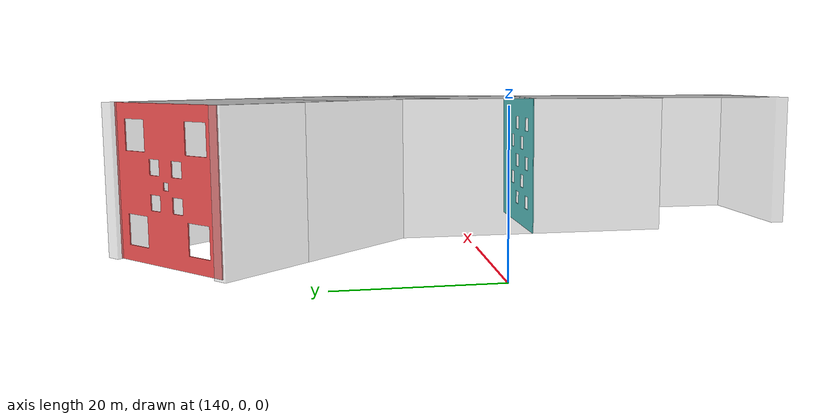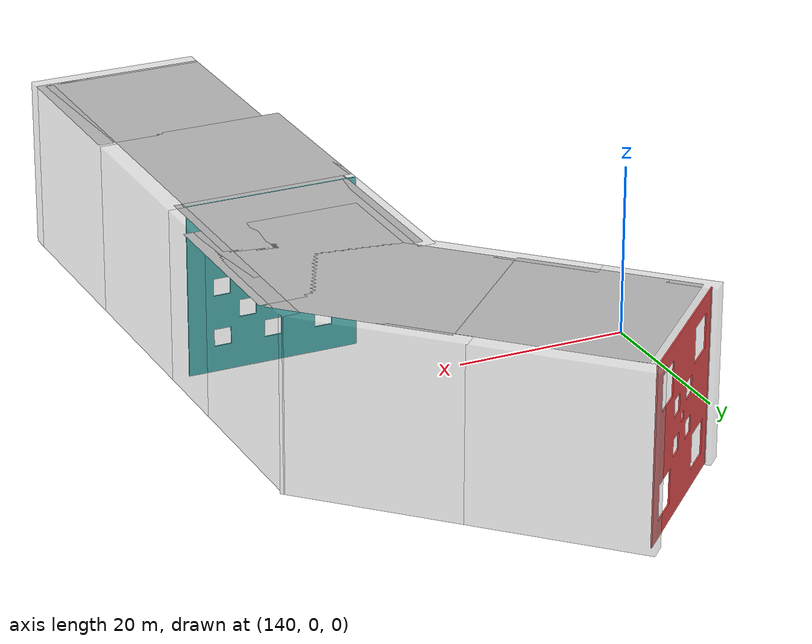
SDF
<?xml version='1.0'?>
<sdf version='1.7'>
  <model name='race_1_07'>
    <link name='link_clone_17'>
      <self_collide>0</self_collide>
      <enable_wind>0</enable_wind>
      <kinematic>0</kinematic>
      <pose>180 -51 10 1.5708 -0 0</pose>
      <visual name='visual'>
        <cast_shadows>1</cast_shadows>
        <transparency>0.6</transparency>
        <geometry>
          <box>
            <size>20 20 2</size>
          </box>
        </geometry>
        <material>
          <script>
            <uri>model://new_wall/materials/scripts</uri>
            <uri>model://new_wall/materials/textures/</uri>
            <name>NewWall/Image</name>
          </script>
          <shader type='pixel'/>
        </material>
        <pose>0 0 0 0 -0 0</pose>
      </visual>
      <collision name='collision'>
        <laser_retro>0</laser_retro>
        <max_contacts>10</max_contacts>
        <pose>0 0 0 0 -0 0</pose>
        <geometry>
          <box>
            <size>20 20 2</size>
          </box>
        </geometry>
        <surface>
          <friction>
            <ode>
              <mu>1</mu>
              <mu2>1</mu2>
              <fdir1>0 0 0</fdir1>
              <slip1>0</slip1>
              <slip2>0</slip2>
            </ode>
            <torsional>
              <coefficient>1</coefficient>
              <patch_radius>0</patch_radius>
              <surface_radius>0</surface_radius>
              <use_patch_radius>1</use_patch_radius>
              <ode>
                <slip>0</slip>
              </ode>
            </torsional>
          </friction>
          <bounce>
            <restitution_coefficient>0</restitution_coefficient>
            <threshold>1e+06</threshold>
          </bounce>
          <contact>
            <collide_without_contact>0</collide_without_contact>
            <collide_without_contact_bitmask>1</collide_without_contact_bitmask>
            <collide_bitmask>1</collide_bitmask>
            <ode>
              <soft_cfm>0</soft_cfm>
              <soft_erp>0.2</soft_erp>
              <kp>1e+13</kp>
              <kd>1</kd>
              <max_vel>0.01</max_vel>
              <min_depth>0</min_depth>
            </ode>
            <bullet>
              <split_impulse>1</split_impulse>
              <split_impulse_penetration_threshold>-0.01</split_impulse_penetration_threshold>
              <soft_cfm>0</soft_cfm>
              <soft_erp>0.2</soft_erp>
              <kp>1e+13</kp>
              <kd>1</kd>
            </bullet>
          </contact>
        </surface>
      </collision>
    </link>
    <link name='link_clone_18'>
      <self_collide>0</self_collide>
      <enable_wind>0</enable_wind>
      <kinematic>0</kinematic>
      <pose>182.482 26 10 1.5708 3e-06 -0.785398</pose>
      <visual name='visual'>
        <cast_shadows>1</cast_shadows>
        <transparency>0.6</transparency>
        <geometry>
          <box>
            <size>20 20 2</size>
          </box>
        </geometry>
        <material>
          <script>
            <uri>model://new_wall/materials/scripts</uri>
            <uri>model://new_wall/materials/textures/</uri>
            <name>NewWall/Image</name>
          </script>
          <shader type='pixel'/>
        </material>
        <pose>0 0 0 0 -0 0</pose>
      </visual>
      <collision name='collision'>
        <laser_retro>0</laser_retro>
        <max_contacts>10</max_contacts>
        <pose>0 0 0 0 -0 0</pose>
        <geometry>
          <box>
            <size>20 20 2</size>
          </box>
        </geometry>
        <surface>
          <friction>
            <ode>
              <mu>1</mu>
              <mu2>1</mu2>
              <fdir1>0 0 0</fdir1>
              <slip1>0</slip1>
              <slip2>0</slip2>
            </ode>
            <torsional>
              <coefficient>1</coefficient>
              <patch_radius>0</patch_radius>
              <surface_radius>0</surface_radius>
              <use_patch_radius>1</use_patch_radius>
              <ode>
                <slip>0</slip>
              </ode>
            </torsional>
          </friction>
          <bounce>
            <restitution_coefficient>0</restitution_coefficient>
            <threshold>1e+06</threshold>
          </bounce>
          <contact>
            <collide_without_contact>0</collide_without_contact>
            <collide_without_contact_bitmask>1</collide_without_contact_bitmask>
            <collide_bitmask>1</collide_bitmask>
            <ode>
              <soft_cfm>0</soft_cfm>
              <soft_erp>0.2</soft_erp>
              <kp>1e+13</kp>
              <kd>1</kd>
              <max_vel>0.01</max_vel>
              <min_depth>0</min_depth>
            </ode>
            <bullet>
              <split_impulse>1</split_impulse>
              <split_impulse_penetration_threshold>-0.01</split_impulse_penetration_threshold>
              <soft_cfm>0</soft_cfm>
              <soft_erp>0.2</soft_erp>
              <kp>1e+13</kp>
              <kd>1</kd>
            </bullet>
          </contact>
        </surface>
      </collision>
    </link>
    <link name='link_clone_18_clone'>
      <self_collide>0</self_collide>
      <enable_wind>0</enable_wind>
      <kinematic>0</kinematic>
      <pose>162.585 16 10 1.5708 3e-06 -0.785398</pose>
      <visual name='visual'>
        <cast_shadows>1</cast_shadows>
        <transparency>0.6</transparency>
        <geometry>
          <box>
            <size>20 20 2</size>
          </box>
        </geometry>
        <material>
          <script>
            <uri>model://new_wall/materials/scripts</uri>
            <uri>model://new_wall/materials/textures/</uri>
            <name>NewWall/Image</name>
          </script>
          <shader type='pixel'/>
        </material>
        <pose>0 0 0 0 -0 0</pose>
      </visual>
      <collision name='collision'>
        <laser_retro>0</laser_retro>
        <max_contacts>10</max_contacts>
        <pose>0 0 0 0 -0 0</pose>
        <geometry>
          <box>
            <size>20 20 2</size>
          </box>
        </geometry>
        <surface>
          <friction>
            <ode>
              <mu>1</mu>
              <mu2>1</mu2>
              <fdir1>0 0 0</fdir1>
              <slip1>0</slip1>
              <slip2>0</slip2>
            </ode>
            <torsional>
              <coefficient>1</coefficient>
              <patch_radius>0</patch_radius>
              <surface_radius>0</surface_radius>
              <use_patch_radius>1</use_patch_radius>
              <ode>
                <slip>0</slip>
              </ode>
            </torsional>
          </friction>
          <bounce>
            <restitution_coefficient>0</restitution_coefficient>
            <threshold>1e+06</threshold>
          </bounce>
          <contact>
            <collide_without_contact>0</collide_without_contact>
            <collide_without_contact_bitmask>1</collide_without_contact_bitmask>
            <collide_bitmask>1</collide_bitmask>
            <ode>
              <soft_cfm>0</soft_cfm>
              <soft_erp>0.2</soft_erp>
              <kp>1e+13</kp>
              <kd>1</kd>
              <max_vel>0.01</max_vel>
              <min_depth>0</min_depth>
            </ode>
            <bullet>
              <split_impulse>1</split_impulse>
              <split_impulse_penetration_threshold>-0.01</split_impulse_penetration_threshold>
              <soft_cfm>0</soft_cfm>
              <soft_erp>0.2</soft_erp>
              <kp>1e+13</kp>
              <kd>1</kd>
            </bullet>
          </contact>
        </surface>
      </collision>
    </link>
    <link name='link_clone_18_clone_0'>
      <self_collide>0</self_collide>
      <enable_wind>0</enable_wind>
      <kinematic>0</kinematic>
      <pose>168.495 40 10 1.5708 3e-06 -0.785398</pose>
      <visual name='visual'>
        <cast_shadows>1</cast_shadows>
        <transparency>0.6</transparency>
        <geometry>
          <box>
            <size>20 20 2</size>
          </box>
        </geometry>
        <material>
          <script>
            <uri>model://new_wall/materials/scripts</uri>
            <uri>model://new_wall/materials/textures/</uri>
            <name>NewWall/Image</name>
          </script>
          <shader type='pixel'/>
        </material>
        <pose>0 0 0 0 -0 0</pose>
      </visual>
      <collision name='collision'>
        <laser_retro>0</laser_retro>
        <max_contacts>10</max_contacts>
        <pose>0 0 0 0 -0 0</pose>
        <geometry>
          <box>
            <size>20 20 2</size>
          </box>
        </geometry>
        <surface>
          <friction>
            <ode>
              <mu>1</mu>
              <mu2>1</mu2>
              <fdir1>0 0 0</fdir1>
              <slip1>0</slip1>
              <slip2>0</slip2>
            </ode>
            <torsional>
              <coefficient>1</coefficient>
              <patch_radius>0</patch_radius>
              <surface_radius>0</surface_radius>
              <use_patch_radius>1</use_patch_radius>
              <ode>
                <slip>0</slip>
              </ode>
            </torsional>
          </friction>
          <bounce>
            <restitution_coefficient>0</restitution_coefficient>
            <threshold>1e+06</threshold>
          </bounce>
          <contact>
            <collide_without_contact>0</collide_without_contact>
            <collide_without_contact_bitmask>1</collide_without_contact_bitmask>
            <collide_bitmask>1</collide_bitmask>
            <ode>
              <soft_cfm>0</soft_cfm>
              <soft_erp>0.2</soft_erp>
              <kp>1e+13</kp>
              <kd>1</kd>
              <max_vel>0.01</max_vel>
              <min_depth>0</min_depth>
            </ode>
            <bullet>
              <split_impulse>1</split_impulse>
              <split_impulse_penetration_threshold>-0.01</split_impulse_penetration_threshold>
              <soft_cfm>0</soft_cfm>
              <soft_erp>0.2</soft_erp>
              <kp>1e+13</kp>
              <kd>1</kd>
            </bullet>
          </contact>
        </surface>
      </collision>
    </link>
    <link name='link_clone_18_clone_1'>
      <self_collide>0</self_collide>
      <enable_wind>0</enable_wind>
      <kinematic>0</kinematic>
      <pose>153.586 25 10 1.5708 3e-06 -0.785398</pose>
      <visual name='visual'>
        <cast_shadows>1</cast_shadows>
        <transparency>0.6</transparency>
        <geometry>
          <box>
            <size>20 20 2</size>
          </box>
        </geometry>
        <material>
          <script>
            <uri>model://new_wall/materials/scripts</uri>
            <uri>model://new_wall/materials/textures/</uri>
            <name>NewWall/Image</name>
          </script>
          <shader type='pixel'/>
        </material>
        <pose>0 0 0 0 -0 0</pose>
      </visual>
      <collision name='collision'>
        <laser_retro>0</laser_retro>
        <max_contacts>10</max_contacts>
        <pose>0 0 0 0 -0 0</pose>
        <geometry>
          <box>
            <size>20 20 2</size>
          </box>
        </geometry>
        <surface>
          <friction>
            <ode>
              <mu>1</mu>
              <mu2>1</mu2>
              <fdir1>0 0 0</fdir1>
              <slip1>0</slip1>
              <slip2>0</slip2>
            </ode>
            <torsional>
              <coefficient>1</coefficient>
              <patch_radius>0</patch_radius>
              <surface_radius>0</surface_radius>
              <use_patch_radius>1</use_patch_radius>
              <ode>
                <slip>0</slip>
              </ode>
            </torsional>
          </friction>
          <bounce>
            <restitution_coefficient>0</restitution_coefficient>
            <threshold>1e+06</threshold>
          </bounce>
          <contact>
            <collide_without_contact>0</collide_without_contact>
            <collide_without_contact_bitmask>1</collide_without_contact_bitmask>
            <collide_bitmask>1</collide_bitmask>
            <ode>
              <soft_cfm>0</soft_cfm>
              <soft_erp>0.2</soft_erp>
              <kp>1e+13</kp>
              <kd>1</kd>
              <max_vel>0.01</max_vel>
              <min_depth>0</min_depth>
            </ode>
            <bullet>
              <split_impulse>1</split_impulse>
              <split_impulse_penetration_threshold>-0.01</split_impulse_penetration_threshold>
              <soft_cfm>0</soft_cfm>
              <soft_erp>0.2</soft_erp>
              <kp>1e+13</kp>
              <kd>1</kd>
            </bullet>
          </contact>
        </surface>
      </collision>
    </link>
    <link name='link_clone_3_clone_3'>
      <self_collide>0</self_collide>
      <enable_wind>0</enable_wind>
      <kinematic>0</kinematic>
      <pose>189 -40 10 1.5708 -0 1.5708</pose>
      <visual name='visual'>
        <cast_shadows>1</cast_shadows>
        <transparency>0.6</transparency>
        <geometry>
          <box>
            <size>20 20 2</size>
          </box>
        </geometry>
        <material>
          <script>
            <uri>model://new_wall/materials/scripts</uri>
            <uri>model://new_wall/materials/textures/</uri>
            <name>NewWall/Image</name>
          </script>
          <shader type='pixel'/>
        </material>
        <pose>0 0 0 0 -0 0</pose>
      </visual>
      <collision name='collision'>
        <laser_retro>0</laser_retro>
        <max_contacts>10</max_contacts>
        <pose>0 0 0 0 -0 0</pose>
        <geometry>
          <box>
            <size>20 20 2</size>
          </box>
        </geometry>
        <surface>
          <friction>
            <ode>
              <mu>1</mu>
              <mu2>1</mu2>
              <fdir1>0 0 0</fdir1>
              <slip1>0</slip1>
              <slip2>0</slip2>
            </ode>
            <torsional>
              <coefficient>1</coefficient>
              <patch_radius>0</patch_radius>
              <surface_radius>0</surface_radius>
              <use_patch_radius>1</use_patch_radius>
              <ode>
                <slip>0</slip>
              </ode>
            </torsional>
          </friction>
          <bounce>
            <restitution_coefficient>0</restitution_coefficient>
            <threshold>1e+06</threshold>
          </bounce>
          <contact>
            <collide_without_contact>0</collide_without_contact>
            <collide_without_contact_bitmask>1</collide_without_contact_bitmask>
            <collide_bitmask>1</collide_bitmask>
            <ode>
              <soft_cfm>0</soft_cfm>
              <soft_erp>0.2</soft_erp>
              <kp>1e+13</kp>
              <kd>1</kd>
              <max_vel>0.01</max_vel>
              <min_depth>0</min_depth>
            </ode>
            <bullet>
              <split_impulse>1</split_impulse>
              <split_impulse_penetration_threshold>-0.01</split_impulse_penetration_threshold>
              <soft_cfm>0</soft_cfm>
              <soft_erp>0.2</soft_erp>
              <kp>1e+13</kp>
              <kd>1</kd>
            </bullet>
          </contact>
        </surface>
      </collision>
    </link>
    <link name='link_clone_3_clone_4'>
      <self_collide>0</self_collide>
      <enable_wind>0</enable_wind>
      <kinematic>0</kinematic>
      <pose>169 -20 10 1.5708 -0 1.5708</pose>
      <visual name='visual'>
        <cast_shadows>1</cast_shadows>
        <transparency>0.6</transparency>
        <geometry>
          <box>
            <size>20 20 2</size>
          </box>
        </geometry>
        <material>
          <script>
            <uri>model://new_wall/materials/scripts</uri>
            <uri>model://new_wall/materials/textures/</uri>
            <name>NewWall/Image</name>
          </script>
          <shader type='pixel'/>
        </material>
        <pose>0 0 0 0 -0 0</pose>
      </visual>
      <collision name='collision'>
        <laser_retro>0</laser_retro>
        <max_contacts>10</max_contacts>
        <pose>0 0 0 0 -0 0</pose>
        <geometry>
          <box>
            <size>20 20 2</size>
          </box>
        </geometry>
        <surface>
          <friction>
            <ode>
              <mu>1</mu>
              <mu2>1</mu2>
              <fdir1>0 0 0</fdir1>
              <slip1>0</slip1>
              <slip2>0</slip2>
            </ode>
            <torsional>
              <coefficient>1</coefficient>
              <patch_radius>0</patch_radius>
              <surface_radius>0</surface_radius>
              <use_patch_radius>1</use_patch_radius>
              <ode>
                <slip>0</slip>
              </ode>
            </torsional>
          </friction>
          <bounce>
            <restitution_coefficient>0</restitution_coefficient>
            <threshold>1e+06</threshold>
          </bounce>
          <contact>
            <collide_without_contact>0</collide_without_contact>
            <collide_without_contact_bitmask>1</collide_without_contact_bitmask>
            <collide_bitmask>1</collide_bitmask>
            <ode>
              <soft_cfm>0</soft_cfm>
              <soft_erp>0.2</soft_erp>
              <kp>1e+13</kp>
              <kd>1</kd>
              <max_vel>0.01</max_vel>
              <min_depth>0</min_depth>
            </ode>
            <bullet>
              <split_impulse>1</split_impulse>
              <split_impulse_penetration_threshold>-0.01</split_impulse_penetration_threshold>
              <soft_cfm>0</soft_cfm>
              <soft_erp>0.2</soft_erp>
              <kp>1e+13</kp>
              <kd>1</kd>
            </bullet>
          </contact>
        </surface>
      </collision>
    </link>
    <link name='link_clone_3_clone_5'>
      <self_collide>0</self_collide>
      <enable_wind>0</enable_wind>
      <kinematic>0</kinematic>
      <pose>189 -20 10 1.5708 -0 1.5708</pose>
      <visual name='visual'>
        <cast_shadows>1</cast_shadows>
        <transparency>0.6</transparency>
        <geometry>
          <box>
            <size>20 20 2</size>
          </box>
        </geometry>
        <material>
          <script>
            <uri>model://new_wall/materials/scripts</uri>
            <uri>model://new_wall/materials/textures/</uri>
            <name>NewWall/Image</name>
          </script>
          <shader type='pixel'/>
        </material>
        <pose>0 0 0 0 -0 0</pose>
      </visual>
      <collision name='collision'>
        <laser_retro>0</laser_retro>
        <max_contacts>10</max_contacts>
        <pose>0 0 0 0 -0 0</pose>
        <geometry>
          <box>
            <size>20 20 2</size>
          </box>
        </geometry>
        <surface>
          <friction>
            <ode>
              <mu>1</mu>
              <mu2>1</mu2>
              <fdir1>0 0 0</fdir1>
              <slip1>0</slip1>
              <slip2>0</slip2>
            </ode>
            <torsional>
              <coefficient>1</coefficient>
              <patch_radius>0</patch_radius>
              <surface_radius>0</surface_radius>
              <use_patch_radius>1</use_patch_radius>
              <ode>
                <slip>0</slip>
              </ode>
            </torsional>
          </friction>
          <bounce>
            <restitution_coefficient>0</restitution_coefficient>
            <threshold>1e+06</threshold>
          </bounce>
          <contact>
            <collide_without_contact>0</collide_without_contact>
            <collide_without_contact_bitmask>1</collide_without_contact_bitmask>
            <collide_bitmask>1</collide_bitmask>
            <ode>
              <soft_cfm>0</soft_cfm>
              <soft_erp>0.2</soft_erp>
              <kp>1e+13</kp>
              <kd>1</kd>
              <max_vel>0.01</max_vel>
              <min_depth>0</min_depth>
            </ode>
            <bullet>
              <split_impulse>1</split_impulse>
              <split_impulse_penetration_threshold>-0.01</split_impulse_penetration_threshold>
              <soft_cfm>0</soft_cfm>
              <soft_erp>0.2</soft_erp>
              <kp>1e+13</kp>
              <kd>1</kd>
            </bullet>
          </contact>
        </surface>
      </collision>
    </link>
    <link name='link_clone_3_clone_6'>
      <self_collide>0</self_collide>
      <enable_wind>0</enable_wind>
      <kinematic>0</kinematic>
      <pose>189 0 10 1.5708 -0 1.5708</pose>
      <visual name='visual'>
        <cast_shadows>1</cast_shadows>
        <transparency>0.6</transparency>
        <geometry>
          <box>
            <size>20 20 2</size>
          </box>
        </geometry>
        <material>
          <script>
            <uri>model://new_wall/materials/scripts</uri>
            <uri>model://new_wall/materials/textures/</uri>
            <name>NewWall/Image</name>
          </script>
          <shader type='pixel'/>
        </material>
        <pose>0 0 0 0 -0 0</pose>
      </visual>
      <collision name='collision'>
        <laser_retro>0</laser_retro>
        <max_contacts>10</max_contacts>
        <pose>0 0 0 0 -0 0</pose>
        <geometry>
          <box>
            <size>20 20 2</size>
          </box>
        </geometry>
        <surface>
          <friction>
            <ode>
              <mu>1</mu>
              <mu2>1</mu2>
              <fdir1>0 0 0</fdir1>
              <slip1>0</slip1>
              <slip2>0</slip2>
            </ode>
            <torsional>
              <coefficient>1</coefficient>
              <patch_radius>0</patch_radius>
              <surface_radius>0</surface_radius>
              <use_patch_radius>1</use_patch_radius>
              <ode>
                <slip>0</slip>
              </ode>
            </torsional>
          </friction>
          <bounce>
            <restitution_coefficient>0</restitution_coefficient>
            <threshold>1e+06</threshold>
          </bounce>
          <contact>
            <collide_without_contact>0</collide_without_contact>
            <collide_without_contact_bitmask>1</collide_without_contact_bitmask>
            <collide_bitmask>1</collide_bitmask>
            <ode>
              <soft_cfm>0</soft_cfm>
              <soft_erp>0.2</soft_erp>
              <kp>1e+13</kp>
              <kd>1</kd>
              <max_vel>0.01</max_vel>
              <min_depth>0</min_depth>
            </ode>
            <bullet>
              <split_impulse>1</split_impulse>
              <split_impulse_penetration_threshold>-0.01</split_impulse_penetration_threshold>
              <soft_cfm>0</soft_cfm>
              <soft_erp>0.2</soft_erp>
              <kp>1e+13</kp>
              <kd>1</kd>
            </bullet>
          </contact>
        </surface>
      </collision>
    </link>
    <link name='link_clone_3_clone_7'>
      <self_collide>0</self_collide>
      <enable_wind>0</enable_wind>
      <kinematic>0</kinematic>
      <pose>169 0 10 1.5708 -0 1.5708</pose>
      <visual name='visual'>
        <cast_shadows>1</cast_shadows>
        <transparency>0.6</transparency>
        <geometry>
          <box>
            <size>20 20 2</size>
          </box>
        </geometry>
        <material>
          <script>
            <uri>model://new_wall/materials/scripts</uri>
            <uri>model://new_wall/materials/textures/</uri>
            <name>NewWall/Image</name>
          </script>
          <shader type='pixel'/>
        </material>
        <pose>0 0 0 0 -0 0</pose>
      </visual>
      <collision name='collision'>
        <laser_retro>0</laser_retro>
        <max_contacts>10</max_contacts>
        <pose>0 0 0 0 -0 0</pose>
        <geometry>
          <box>
            <size>20 20 2</size>
          </box>
        </geometry>
        <surface>
          <friction>
            <ode>
              <mu>1</mu>
              <mu2>1</mu2>
              <fdir1>0 0 0</fdir1>
              <slip1>0</slip1>
              <slip2>0</slip2>
            </ode>
            <torsional>
              <coefficient>1</coefficient>
              <patch_radius>0</patch_radius>
              <surface_radius>0</surface_radius>
              <use_patch_radius>1</use_patch_radius>
              <ode>
                <slip>0</slip>
              </ode>
            </torsional>
          </friction>
          <bounce>
            <restitution_coefficient>0</restitution_coefficient>
            <threshold>1e+06</threshold>
          </bounce>
          <contact>
            <collide_without_contact>0</collide_without_contact>
            <collide_without_contact_bitmask>1</collide_without_contact_bitmask>
            <collide_bitmask>1</collide_bitmask>
            <ode>
              <soft_cfm>0</soft_cfm>
              <soft_erp>0.2</soft_erp>
              <kp>1e+13</kp>
              <kd>1</kd>
              <max_vel>0.01</max_vel>
              <min_depth>0</min_depth>
            </ode>
            <bullet>
              <split_impulse>1</split_impulse>
              <split_impulse_penetration_threshold>-0.01</split_impulse_penetration_threshold>
              <soft_cfm>0</soft_cfm>
              <soft_erp>0.2</soft_erp>
              <kp>1e+13</kp>
              <kd>1</kd>
            </bullet>
          </contact>
        </surface>
      </collision>
    </link>
    <link name='link_clone_3_clone_8'>
      <self_collide>0</self_collide>
      <enable_wind>0</enable_wind>
      <kinematic>0</kinematic>
      <pose>189 10 10 1.5708 -0 1.5708</pose>
      <visual name='visual'>
        <cast_shadows>1</cast_shadows>
        <transparency>0.6</transparency>
        <geometry>
          <box>
            <size>20 20 2</size>
          </box>
        </geometry>
        <material>
          <script>
            <uri>model://new_wall/materials/scripts</uri>
            <uri>model://new_wall/materials/textures/</uri>
            <name>NewWall/Image</name>
          </script>
          <shader type='pixel'/>
        </material>
        <pose>0 0 0 0 -0 0</pose>
      </visual>
      <collision name='collision'>
        <laser_retro>0</laser_retro>
        <max_contacts>10</max_contacts>
        <pose>0 0 0 0 -0 0</pose>
        <geometry>
          <box>
            <size>20 20 2</size>
          </box>
        </geometry>
        <surface>
          <friction>
            <ode>
              <mu>1</mu>
              <mu2>1</mu2>
              <fdir1>0 0 0</fdir1>
              <slip1>0</slip1>
              <slip2>0</slip2>
            </ode>
            <torsional>
              <coefficient>1</coefficient>
              <patch_radius>0</patch_radius>
              <surface_radius>0</surface_radius>
              <use_patch_radius>1</use_patch_radius>
              <ode>
                <slip>0</slip>
              </ode>
            </torsional>
          </friction>
          <bounce>
            <restitution_coefficient>0</restitution_coefficient>
            <threshold>1e+06</threshold>
          </bounce>
          <contact>
            <collide_without_contact>0</collide_without_contact>
            <collide_without_contact_bitmask>1</collide_without_contact_bitmask>
            <collide_bitmask>1</collide_bitmask>
            <ode>
              <soft_cfm>0</soft_cfm>
              <soft_erp>0.2</soft_erp>
              <kp>1e+13</kp>
              <kd>1</kd>
              <max_vel>0.01</max_vel>
              <min_depth>0</min_depth>
            </ode>
            <bullet>
              <split_impulse>1</split_impulse>
              <split_impulse_penetration_threshold>-0.01</split_impulse_penetration_threshold>
              <soft_cfm>0</soft_cfm>
              <soft_erp>0.2</soft_erp>
              <kp>1e+13</kp>
              <kd>1</kd>
            </bullet>
          </contact>
        </surface>
      </collision>
    </link>
    <model name='oneSidedPlane_2_clone_12'>
      <static>1</static>
      <link name='link'>
        <collision name='collision'>
          <geometry>
            <box>
              <size>20 20 0.1</size>
            </box>
          </geometry>
          <max_contacts>10</max_contacts>
          <surface>
            <contact>
              <ode/>
            </contact>
            <bounce/>
            <friction>
              <torsional>
                <ode/>
              </torsional>
              <ode/>
            </friction>
          </surface>
        </collision>
        <visual name='visual'>
          <cast_shadows>0</cast_shadows>
          <geometry>
            <mesh>
              <scale>1 1 1</scale>
              <uri>model://oneSidedPlane_2/wall1.obj</uri>
            </mesh>
          </geometry>
        </visual>
        <self_collide>0</self_collide>
        <enable_wind>0</enable_wind>
        <kinematic>0</kinematic>
      </link>
      <pose>176.459 17.0896 20 0 -0 0.785398</pose>
    </model>
    <model name='oneSidedPlane_2_clone_12_clone'>
      <static>1</static>
      <link name='link'>
        <collision name='collision'>
          <geometry>
            <box>
              <size>20 20 0.1</size>
            </box>
          </geometry>
          <max_contacts>10</max_contacts>
          <surface>
            <contact>
              <ode/>
            </contact>
            <bounce/>
            <friction>
              <torsional>
                <ode/>
              </torsional>
              <ode/>
            </friction>
          </surface>
        </collision>
        <visual name='visual'>
          <cast_shadows>0</cast_shadows>
          <geometry>
            <mesh>
              <scale>1 1 1</scale>
              <uri>model://oneSidedPlane_2/wall1.obj</uri>
            </mesh>
          </geometry>
        </visual>
        <self_collide>0</self_collide>
        <enable_wind>0</enable_wind>
        <kinematic>0</kinematic>
      </link>
      <pose>162 31 20 0 -0 0.785398</pose>
    </model>
    <model name='oneSidedPlane_2_clone_5'>
      <static>1</static>
      <link name='link'>
        <collision name='collision'>
          <geometry>
            <box>
              <size>20 20 0.1</size>
            </box>
          </geometry>
          <max_contacts>10</max_contacts>
          <surface>
            <contact>
              <ode/>
            </contact>
            <bounce/>
            <friction>
              <torsional>
                <ode/>
              </torsional>
              <ode/>
            </friction>
          </surface>
        </collision>
        <visual name='visual'>
          <cast_shadows>0</cast_shadows>
          <geometry>
            <mesh>
              <scale>1 1 1</scale>
              <uri>model://oneSidedPlane_2/wall1.obj</uri>
            </mesh>
          </geometry>
        </visual>
        <self_collide>0</self_collide>
        <enable_wind>0</enable_wind>
        <kinematic>0</kinematic>
      </link>
      <pose>180 -40.4409 20 0 -0 0</pose>
    </model>
    <model name='oneSidedPlane_2_clone_6'>
      <static>1</static>
      <link name='link'>
        <collision name='collision'>
          <geometry>
            <box>
              <size>20 20 0.1</size>
            </box>
          </geometry>
          <max_contacts>10</max_contacts>
          <surface>
            <contact>
              <ode/>
            </contact>
            <bounce/>
            <friction>
              <torsional>
                <ode/>
              </torsional>
              <ode/>
            </friction>
          </surface>
        </collision>
        <visual name='visual'>
          <cast_shadows>0</cast_shadows>
          <geometry>
            <mesh>
              <scale>1 1 1</scale>
              <uri>model://oneSidedPlane_2/wall1.obj</uri>
            </mesh>
          </geometry>
        </visual>
        <self_collide>0</self_collide>
        <enable_wind>0</enable_wind>
        <kinematic>0</kinematic>
      </link>
      <pose>178 -21 20 0 -0 0</pose>
    </model>
    <model name='oneSidedPlane_2_clone_7'>
      <static>1</static>
      <link name='link'>
        <collision name='collision'>
          <geometry>
            <box>
              <size>20 20 0.1</size>
            </box>
          </geometry>
          <max_contacts>10</max_contacts>
          <surface>
            <contact>
              <ode/>
            </contact>
            <bounce/>
            <friction>
              <torsional>
                <ode/>
              </torsional>
              <ode/>
            </friction>
          </surface>
        </collision>
        <visual name='visual'>
          <cast_shadows>0</cast_shadows>
          <geometry>
            <mesh>
              <scale>1 1 1</scale>
              <uri>model://oneSidedPlane_2/wall1.obj</uri>
            </mesh>
          </geometry>
        </visual>
        <self_collide>0</self_collide>
        <enable_wind>0</enable_wind>
        <kinematic>0</kinematic>
      </link>
      <pose>179 -1 20 0 -0 0</pose>
    </model>
    <model name='oneSidedPlane_2_clone_7_clone'>
      <static>1</static>
      <link name='link'>
        <collision name='collision'>
          <geometry>
            <box>
              <size>20 20 0.1</size>
            </box>
          </geometry>
          <max_contacts>10</max_contacts>
          <surface>
            <contact>
              <ode/>
            </contact>
            <bounce/>
            <friction>
              <torsional>
                <ode/>
              </torsional>
              <ode/>
            </friction>
          </surface>
        </collision>
        <visual name='visual'>
          <cast_shadows>0</cast_shadows>
          <geometry>
            <mesh>
              <scale>1 1 1</scale>
              <uri>model://oneSidedPlane_2/wall1.obj</uri>
            </mesh>
          </geometry>
        </visual>
        <self_collide>0</self_collide>
        <enable_wind>0</enable_wind>
        <kinematic>0</kinematic>
      </link>
      <pose>181 6.59503 20 0 -0 0</pose>
    </model>
    <model name='partition_7'>
      <static>1</static>
      <link name='link'>
        <pose>-10 0 0 1.57 -0 0</pose>
        <collision name='collision'>
          <geometry>
            <mesh>
              <scale>0.001 0.001 0.001</scale>
              <uri>model://partition_7/model.stl</uri>
            </mesh>
          </geometry>
          <max_contacts>10</max_contacts>
          <surface>
            <contact>
              <ode/>
            </contact>
            <bounce/>
            <friction>
              <torsional>
                <ode/>
              </torsional>
              <ode/>
            </friction>
          </surface>
        </collision>
        <visual name='visual'>
          <cast_shadows>1</cast_shadows>
          <geometry>
            <mesh>
              <scale>0.001 0.001 0.001</scale>
              <uri>model://partition_7/model.stl</uri>
            </mesh>
          </geometry>
          <material>
            <ambient>0.1 0.8 0.8 1</ambient>
            <diffuse>0.1 0.8 0.8 1</diffuse>
            <specular>0.1 0.1 0.1 0</specular>
            <emissive>0.1 0.2 0.2 1</emissive>
          </material>
        </visual>
        <self_collide>0</self_collide>
        <enable_wind>0</enable_wind>
        <kinematic>0</kinematic>
      </link>
      <pose>178 -10 0 0 -0 0</pose>
    </model>
    <model name='partition_9'>
      <static>1</static>
      <link name='link'>
        <pose>-10 0 0 1.57 -0 0</pose>
        <collision name='collision'>
          <geometry>
            <mesh>
              <scale>0.001 0.001 0.001</scale>
              <uri>model://partition_9/model.stl</uri>
            </mesh>
          </geometry>
          <max_contacts>10</max_contacts>
          <surface>
            <contact>
              <ode/>
            </contact>
            <bounce/>
            <friction>
              <torsional>
                <ode/>
              </torsional>
              <ode/>
            </friction>
          </surface>
        </collision>
        <visual name='visual'>
          <cast_shadows>1</cast_shadows>
          <geometry>
            <mesh>
              <scale>0.001 0.001 0.001</scale>
              <uri>model://partition_9/model.stl</uri>
            </mesh>
          </geometry>
          <material>
            <ambient>0.9 0.3 0.3 1</ambient>
            <diffuse>0.9 0.3 0.3 1</diffuse>
            <specular>0.1 0.1 0.1 0</specular>
            <emissive>0.3 0.2 0.2 1</emissive>
          </material>
        </visual>
        <self_collide>0</self_collide>
        <enable_wind>0</enable_wind>
        <kinematic>0</kinematic>
      </link>
      <pose>154.489 39 0 0 -0 0.785398</pose>
    </model>
    <static>1</static>
    <allow_auto_disable>1</allow_auto_disable>
  </model>
</sdf>
